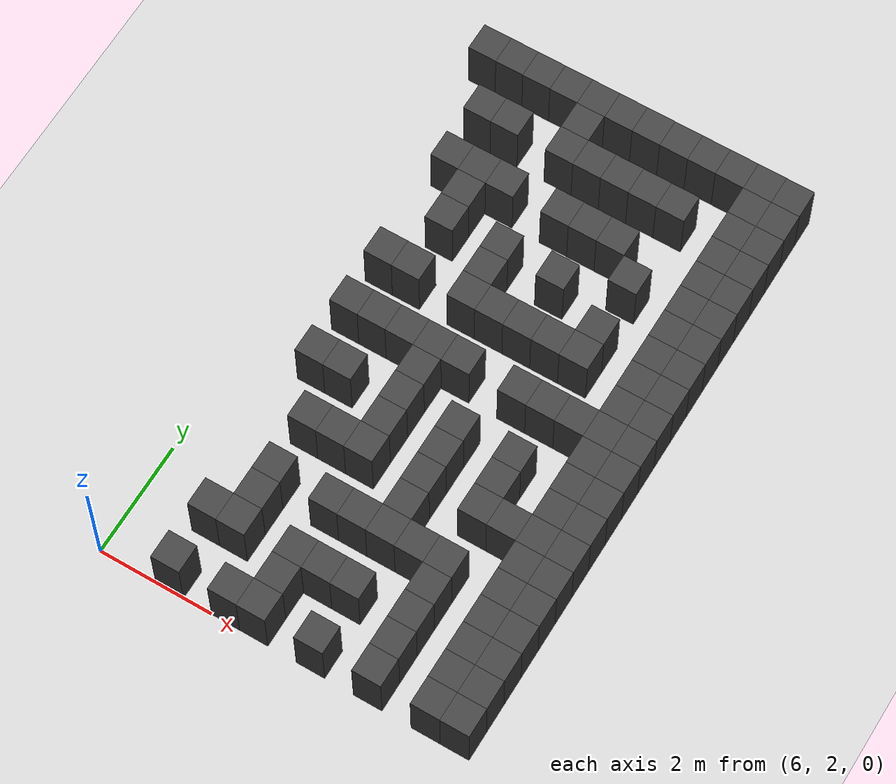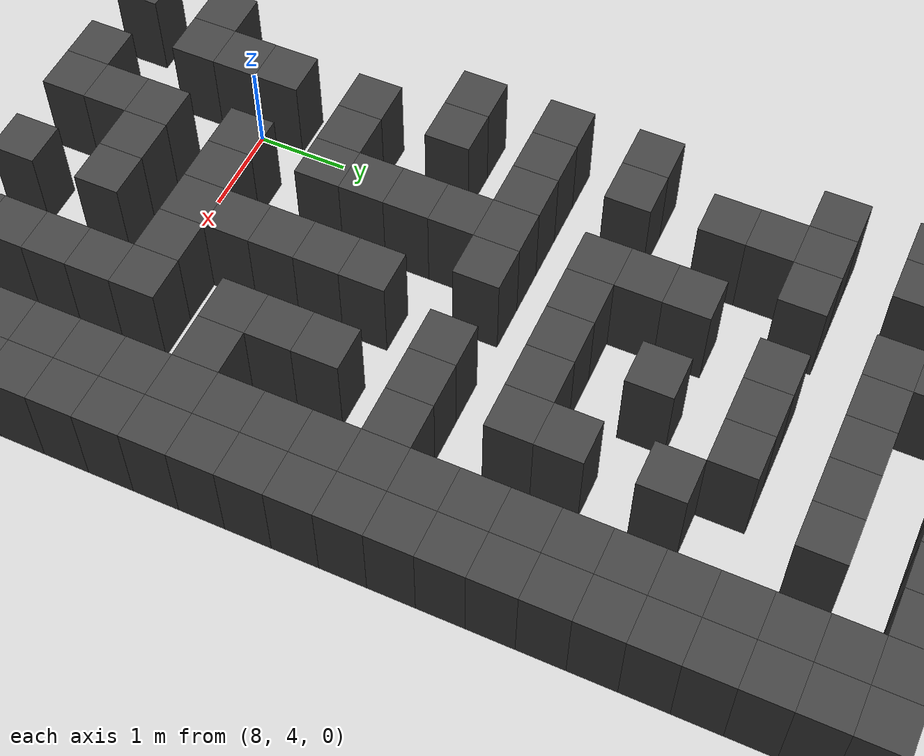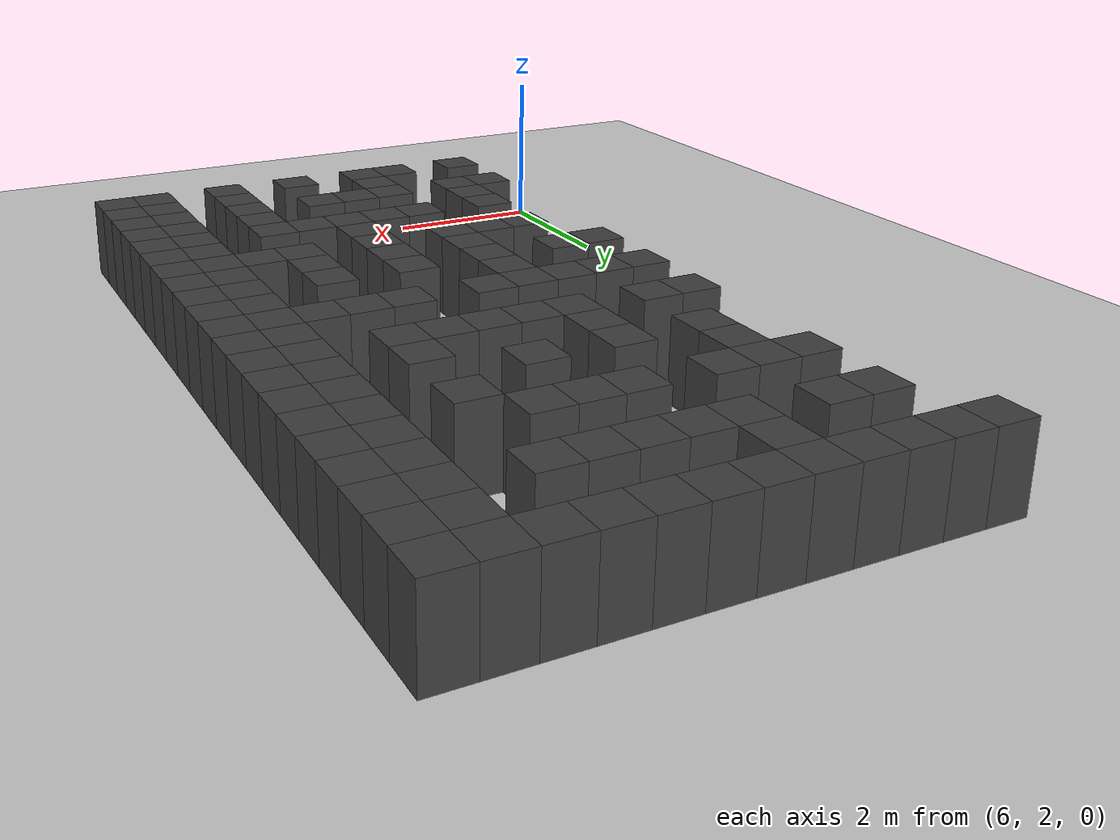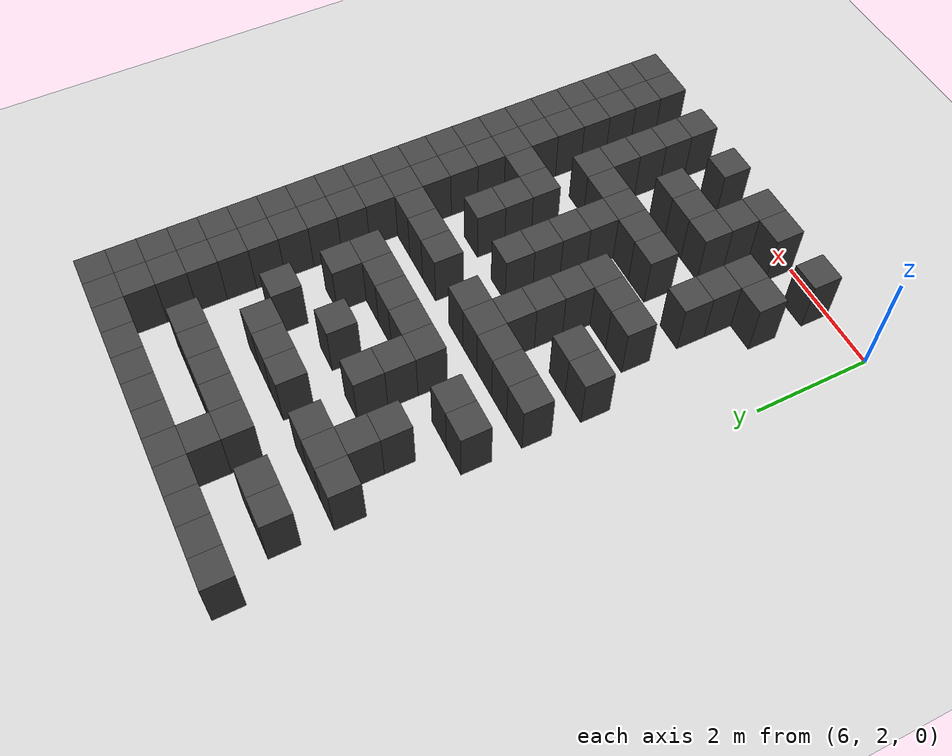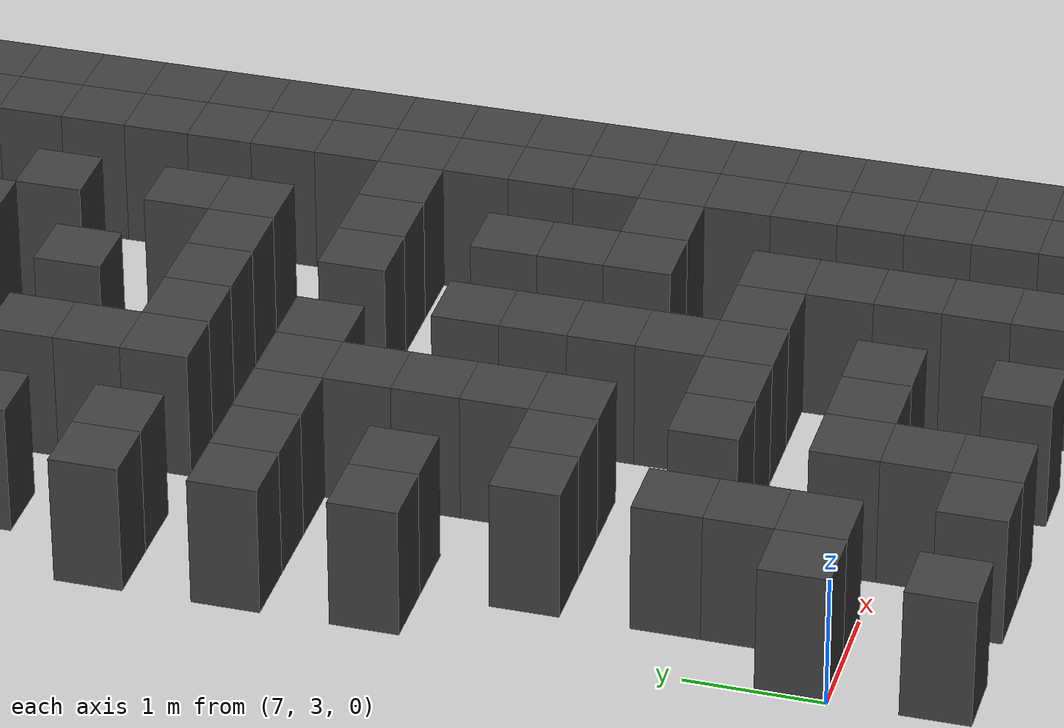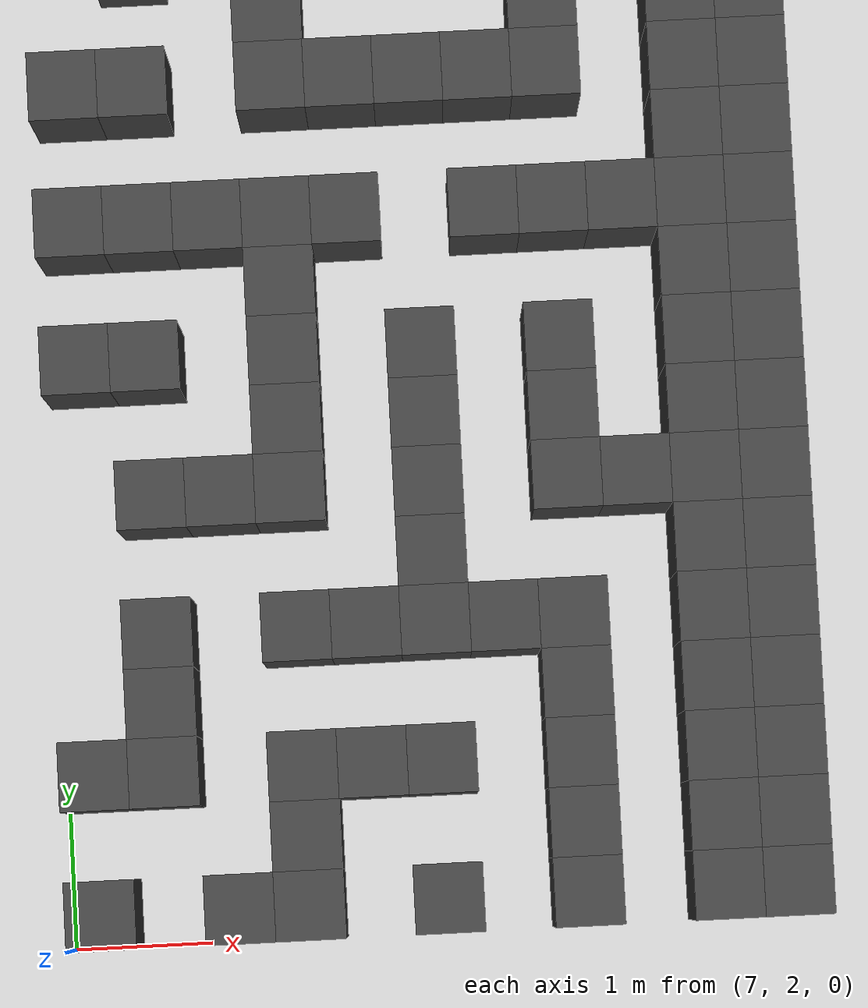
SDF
<sdf version="1.7">
 <world name="map_16734">
  <model name="ground_plane">
   <static>true</static>
   <link name="link">
    <collision name="collision">
     <geometry><plane><normal>0 0 1</normal><size>200 200</size></plane></geometry>
    </collision>
    <visual name="visual">
     <geometry><plane><normal>0 0 1</normal><size>200 200</size></plane></geometry>
     <material><ambient>0.8 0.8 0.8 1</ambient><diffuse>0.8 0.8 0.8 1</diffuse></material>
    </visual>
   </link>
  </model>
  <model name="maze_environment">
   <static>true</static>
   <link name="wall_38">
    <pose>6.750 12.250 0.500 0 0 0</pose>
    <collision name="col"><geometry><box><size>0.5 0.5 1.0</size></box></geometry></collision>
    <visual name="vis">
     <geometry><box><size>0.5 0.5 1.0</size></box></geometry>
     <material><ambient>0.15 0.15 0.15 1</ambient><diffuse>0.25 0.25 0.25 1</diffuse></material>
    </visual>
   </link>
   <link name="wall_39">
    <pose>7.250 12.250 0.500 0 0 0</pose>
    <collision name="col"><geometry><box><size>0.5 0.5 1.0</size></box></geometry></collision>
    <visual name="vis">
     <geometry><box><size>0.5 0.5 1.0</size></box></geometry>
     <material><ambient>0.15 0.15 0.15 1</ambient><diffuse>0.25 0.25 0.25 1</diffuse></material>
    </visual>
   </link>
   <link name="wall_40">
    <pose>7.750 12.250 0.500 0 0 0</pose>
    <collision name="col"><geometry><box><size>0.5 0.5 1.0</size></box></geometry></collision>
    <visual name="vis">
     <geometry><box><size>0.5 0.5 1.0</size></box></geometry>
     <material><ambient>0.15 0.15 0.15 1</ambient><diffuse>0.25 0.25 0.25 1</diffuse></material>
    </visual>
   </link>
   <link name="wall_41">
    <pose>8.250 12.250 0.500 0 0 0</pose>
    <collision name="col"><geometry><box><size>0.5 0.5 1.0</size></box></geometry></collision>
    <visual name="vis">
     <geometry><box><size>0.5 0.5 1.0</size></box></geometry>
     <material><ambient>0.15 0.15 0.15 1</ambient><diffuse>0.25 0.25 0.25 1</diffuse></material>
    </visual>
   </link>
   <link name="wall_42">
    <pose>8.750 12.250 0.500 0 0 0</pose>
    <collision name="col"><geometry><box><size>0.5 0.5 1.0</size></box></geometry></collision>
    <visual name="vis">
     <geometry><box><size>0.5 0.5 1.0</size></box></geometry>
     <material><ambient>0.15 0.15 0.15 1</ambient><diffuse>0.25 0.25 0.25 1</diffuse></material>
    </visual>
   </link>
   <link name="wall_43">
    <pose>9.250 12.250 0.500 0 0 0</pose>
    <collision name="col"><geometry><box><size>0.5 0.5 1.0</size></box></geometry></collision>
    <visual name="vis">
     <geometry><box><size>0.5 0.5 1.0</size></box></geometry>
     <material><ambient>0.15 0.15 0.15 1</ambient><diffuse>0.25 0.25 0.25 1</diffuse></material>
    </visual>
   </link>
   <link name="wall_44">
    <pose>9.750 12.250 0.500 0 0 0</pose>
    <collision name="col"><geometry><box><size>0.5 0.5 1.0</size></box></geometry></collision>
    <visual name="vis">
     <geometry><box><size>0.5 0.5 1.0</size></box></geometry>
     <material><ambient>0.15 0.15 0.15 1</ambient><diffuse>0.25 0.25 0.25 1</diffuse></material>
    </visual>
   </link>
   <link name="wall_45">
    <pose>10.250 12.250 0.500 0 0 0</pose>
    <collision name="col"><geometry><box><size>0.5 0.5 1.0</size></box></geometry></collision>
    <visual name="vis">
     <geometry><box><size>0.5 0.5 1.0</size></box></geometry>
     <material><ambient>0.15 0.15 0.15 1</ambient><diffuse>0.25 0.25 0.25 1</diffuse></material>
    </visual>
   </link>
   <link name="wall_46">
    <pose>10.750 12.250 0.500 0 0 0</pose>
    <collision name="col"><geometry><box><size>0.5 0.5 1.0</size></box></geometry></collision>
    <visual name="vis">
     <geometry><box><size>0.5 0.5 1.0</size></box></geometry>
     <material><ambient>0.15 0.15 0.15 1</ambient><diffuse>0.25 0.25 0.25 1</diffuse></material>
    </visual>
   </link>
   <link name="wall_47">
    <pose>11.250 12.250 0.500 0 0 0</pose>
    <collision name="col"><geometry><box><size>0.5 0.5 1.0</size></box></geometry></collision>
    <visual name="vis">
     <geometry><box><size>0.5 0.5 1.0</size></box></geometry>
     <material><ambient>0.15 0.15 0.15 1</ambient><diffuse>0.25 0.25 0.25 1</diffuse></material>
    </visual>
   </link>
   <link name="wall_48">
    <pose>11.750 12.250 0.500 0 0 0</pose>
    <collision name="col"><geometry><box><size>0.5 0.5 1.0</size></box></geometry></collision>
    <visual name="vis">
     <geometry><box><size>0.5 0.5 1.0</size></box></geometry>
     <material><ambient>0.15 0.15 0.15 1</ambient><diffuse>0.25 0.25 0.25 1</diffuse></material>
    </visual>
   </link>
   <link name="wall_49">
    <pose>12.250 12.250 0.500 0 0 0</pose>
    <collision name="col"><geometry><box><size>0.5 0.5 1.0</size></box></geometry></collision>
    <visual name="vis">
     <geometry><box><size>0.5 0.5 1.0</size></box></geometry>
     <material><ambient>0.15 0.15 0.15 1</ambient><diffuse>0.25 0.25 0.25 1</diffuse></material>
    </visual>
   </link>
   <link name="wall_55">
    <pose>8.750 11.750 0.500 0 0 0</pose>
    <collision name="col"><geometry><box><size>0.5 0.5 1.0</size></box></geometry></collision>
    <visual name="vis">
     <geometry><box><size>0.5 0.5 1.0</size></box></geometry>
     <material><ambient>0.15 0.15 0.15 1</ambient><diffuse>0.25 0.25 0.25 1</diffuse></material>
    </visual>
   </link>
   <link name="wall_56">
    <pose>11.750 11.750 0.500 0 0 0</pose>
    <collision name="col"><geometry><box><size>0.5 0.5 1.0</size></box></geometry></collision>
    <visual name="vis">
     <geometry><box><size>0.5 0.5 1.0</size></box></geometry>
     <material><ambient>0.15 0.15 0.15 1</ambient><diffuse>0.25 0.25 0.25 1</diffuse></material>
    </visual>
   </link>
   <link name="wall_57">
    <pose>12.250 11.750 0.500 0 0 0</pose>
    <collision name="col"><geometry><box><size>0.5 0.5 1.0</size></box></geometry></collision>
    <visual name="vis">
     <geometry><box><size>0.5 0.5 1.0</size></box></geometry>
     <material><ambient>0.15 0.15 0.15 1</ambient><diffuse>0.25 0.25 0.25 1</diffuse></material>
    </visual>
   </link>
   <link name="wall_87">
    <pose>7.250 11.250 0.500 0 0 0</pose>
    <collision name="col"><geometry><box><size>0.5 0.5 1.0</size></box></geometry></collision>
    <visual name="vis">
     <geometry><box><size>0.5 0.5 1.0</size></box></geometry>
     <material><ambient>0.15 0.15 0.15 1</ambient><diffuse>0.25 0.25 0.25 1</diffuse></material>
    </visual>
   </link>
   <link name="wall_88">
    <pose>7.750 11.250 0.500 0 0 0</pose>
    <collision name="col"><geometry><box><size>0.5 0.5 1.0</size></box></geometry></collision>
    <visual name="vis">
     <geometry><box><size>0.5 0.5 1.0</size></box></geometry>
     <material><ambient>0.15 0.15 0.15 1</ambient><diffuse>0.25 0.25 0.25 1</diffuse></material>
    </visual>
   </link>
   <link name="wall_89">
    <pose>8.750 11.250 0.500 0 0 0</pose>
    <collision name="col"><geometry><box><size>0.5 0.5 1.0</size></box></geometry></collision>
    <visual name="vis">
     <geometry><box><size>0.5 0.5 1.0</size></box></geometry>
     <material><ambient>0.15 0.15 0.15 1</ambient><diffuse>0.25 0.25 0.25 1</diffuse></material>
    </visual>
   </link>
   <link name="wall_90">
    <pose>9.250 11.250 0.500 0 0 0</pose>
    <collision name="col"><geometry><box><size>0.5 0.5 1.0</size></box></geometry></collision>
    <visual name="vis">
     <geometry><box><size>0.5 0.5 1.0</size></box></geometry>
     <material><ambient>0.15 0.15 0.15 1</ambient><diffuse>0.25 0.25 0.25 1</diffuse></material>
    </visual>
   </link>
   <link name="wall_91">
    <pose>9.750 11.250 0.500 0 0 0</pose>
    <collision name="col"><geometry><box><size>0.5 0.5 1.0</size></box></geometry></collision>
    <visual name="vis">
     <geometry><box><size>0.5 0.5 1.0</size></box></geometry>
     <material><ambient>0.15 0.15 0.15 1</ambient><diffuse>0.25 0.25 0.25 1</diffuse></material>
    </visual>
   </link>
   <link name="wall_92">
    <pose>10.250 11.250 0.500 0 0 0</pose>
    <collision name="col"><geometry><box><size>0.5 0.5 1.0</size></box></geometry></collision>
    <visual name="vis">
     <geometry><box><size>0.5 0.5 1.0</size></box></geometry>
     <material><ambient>0.15 0.15 0.15 1</ambient><diffuse>0.25 0.25 0.25 1</diffuse></material>
    </visual>
   </link>
   <link name="wall_93">
    <pose>10.750 11.250 0.500 0 0 0</pose>
    <collision name="col"><geometry><box><size>0.5 0.5 1.0</size></box></geometry></collision>
    <visual name="vis">
     <geometry><box><size>0.5 0.5 1.0</size></box></geometry>
     <material><ambient>0.15 0.15 0.15 1</ambient><diffuse>0.25 0.25 0.25 1</diffuse></material>
    </visual>
   </link>
   <link name="wall_94">
    <pose>11.750 11.250 0.500 0 0 0</pose>
    <collision name="col"><geometry><box><size>0.5 0.5 1.0</size></box></geometry></collision>
    <visual name="vis">
     <geometry><box><size>0.5 0.5 1.0</size></box></geometry>
     <material><ambient>0.15 0.15 0.15 1</ambient><diffuse>0.25 0.25 0.25 1</diffuse></material>
    </visual>
   </link>
   <link name="wall_95">
    <pose>12.250 11.250 0.500 0 0 0</pose>
    <collision name="col"><geometry><box><size>0.5 0.5 1.0</size></box></geometry></collision>
    <visual name="vis">
     <geometry><box><size>0.5 0.5 1.0</size></box></geometry>
     <material><ambient>0.15 0.15 0.15 1</ambient><diffuse>0.25 0.25 0.25 1</diffuse></material>
    </visual>
   </link>
   <link name="wall_106">
    <pose>11.750 10.750 0.500 0 0 0</pose>
    <collision name="col"><geometry><box><size>0.5 0.5 1.0</size></box></geometry></collision>
    <visual name="vis">
     <geometry><box><size>0.5 0.5 1.0</size></box></geometry>
     <material><ambient>0.15 0.15 0.15 1</ambient><diffuse>0.25 0.25 0.25 1</diffuse></material>
    </visual>
   </link>
   <link name="wall_107">
    <pose>12.250 10.750 0.500 0 0 0</pose>
    <collision name="col"><geometry><box><size>0.5 0.5 1.0</size></box></geometry></collision>
    <visual name="vis">
     <geometry><box><size>0.5 0.5 1.0</size></box></geometry>
     <material><ambient>0.15 0.15 0.15 1</ambient><diffuse>0.25 0.25 0.25 1</diffuse></material>
    </visual>
   </link>
   <link name="wall_137">
    <pose>7.250 10.250 0.500 0 0 0</pose>
    <collision name="col"><geometry><box><size>0.5 0.5 1.0</size></box></geometry></collision>
    <visual name="vis">
     <geometry><box><size>0.5 0.5 1.0</size></box></geometry>
     <material><ambient>0.15 0.15 0.15 1</ambient><diffuse>0.25 0.25 0.25 1</diffuse></material>
    </visual>
   </link>
   <link name="wall_138">
    <pose>7.750 10.250 0.500 0 0 0</pose>
    <collision name="col"><geometry><box><size>0.5 0.5 1.0</size></box></geometry></collision>
    <visual name="vis">
     <geometry><box><size>0.5 0.5 1.0</size></box></geometry>
     <material><ambient>0.15 0.15 0.15 1</ambient><diffuse>0.25 0.25 0.25 1</diffuse></material>
    </visual>
   </link>
   <link name="wall_139">
    <pose>8.250 10.250 0.500 0 0 0</pose>
    <collision name="col"><geometry><box><size>0.5 0.5 1.0</size></box></geometry></collision>
    <visual name="vis">
     <geometry><box><size>0.5 0.5 1.0</size></box></geometry>
     <material><ambient>0.15 0.15 0.15 1</ambient><diffuse>0.25 0.25 0.25 1</diffuse></material>
    </visual>
   </link>
   <link name="wall_140">
    <pose>9.250 10.250 0.500 0 0 0</pose>
    <collision name="col"><geometry><box><size>0.5 0.5 1.0</size></box></geometry></collision>
    <visual name="vis">
     <geometry><box><size>0.5 0.5 1.0</size></box></geometry>
     <material><ambient>0.15 0.15 0.15 1</ambient><diffuse>0.25 0.25 0.25 1</diffuse></material>
    </visual>
   </link>
   <link name="wall_141">
    <pose>9.750 10.250 0.500 0 0 0</pose>
    <collision name="col"><geometry><box><size>0.5 0.5 1.0</size></box></geometry></collision>
    <visual name="vis">
     <geometry><box><size>0.5 0.5 1.0</size></box></geometry>
     <material><ambient>0.15 0.15 0.15 1</ambient><diffuse>0.25 0.25 0.25 1</diffuse></material>
    </visual>
   </link>
   <link name="wall_142">
    <pose>10.250 10.250 0.500 0 0 0</pose>
    <collision name="col"><geometry><box><size>0.5 0.5 1.0</size></box></geometry></collision>
    <visual name="vis">
     <geometry><box><size>0.5 0.5 1.0</size></box></geometry>
     <material><ambient>0.15 0.15 0.15 1</ambient><diffuse>0.25 0.25 0.25 1</diffuse></material>
    </visual>
   </link>
   <link name="wall_143">
    <pose>11.750 10.250 0.500 0 0 0</pose>
    <collision name="col"><geometry><box><size>0.5 0.5 1.0</size></box></geometry></collision>
    <visual name="vis">
     <geometry><box><size>0.5 0.5 1.0</size></box></geometry>
     <material><ambient>0.15 0.15 0.15 1</ambient><diffuse>0.25 0.25 0.25 1</diffuse></material>
    </visual>
   </link>
   <link name="wall_144">
    <pose>12.250 10.250 0.500 0 0 0</pose>
    <collision name="col"><geometry><box><size>0.5 0.5 1.0</size></box></geometry></collision>
    <visual name="vis">
     <geometry><box><size>0.5 0.5 1.0</size></box></geometry>
     <material><ambient>0.15 0.15 0.15 1</ambient><diffuse>0.25 0.25 0.25 1</diffuse></material>
    </visual>
   </link>
   <link name="wall_154">
    <pose>7.750 9.750 0.500 0 0 0</pose>
    <collision name="col"><geometry><box><size>0.5 0.5 1.0</size></box></geometry></collision>
    <visual name="vis">
     <geometry><box><size>0.5 0.5 1.0</size></box></geometry>
     <material><ambient>0.15 0.15 0.15 1</ambient><diffuse>0.25 0.25 0.25 1</diffuse></material>
    </visual>
   </link>
   <link name="wall_155">
    <pose>10.750 9.750 0.500 0 0 0</pose>
    <collision name="col"><geometry><box><size>0.5 0.5 1.0</size></box></geometry></collision>
    <visual name="vis">
     <geometry><box><size>0.5 0.5 1.0</size></box></geometry>
     <material><ambient>0.15 0.15 0.15 1</ambient><diffuse>0.25 0.25 0.25 1</diffuse></material>
    </visual>
   </link>
   <link name="wall_156">
    <pose>11.750 9.750 0.500 0 0 0</pose>
    <collision name="col"><geometry><box><size>0.5 0.5 1.0</size></box></geometry></collision>
    <visual name="vis">
     <geometry><box><size>0.5 0.5 1.0</size></box></geometry>
     <material><ambient>0.15 0.15 0.15 1</ambient><diffuse>0.25 0.25 0.25 1</diffuse></material>
    </visual>
   </link>
   <link name="wall_157">
    <pose>12.250 9.750 0.500 0 0 0</pose>
    <collision name="col"><geometry><box><size>0.5 0.5 1.0</size></box></geometry></collision>
    <visual name="vis">
     <geometry><box><size>0.5 0.5 1.0</size></box></geometry>
     <material><ambient>0.15 0.15 0.15 1</ambient><diffuse>0.25 0.25 0.25 1</diffuse></material>
    </visual>
   </link>
   <link name="wall_183">
    <pose>7.750 9.250 0.500 0 0 0</pose>
    <collision name="col"><geometry><box><size>0.5 0.5 1.0</size></box></geometry></collision>
    <visual name="vis">
     <geometry><box><size>0.5 0.5 1.0</size></box></geometry>
     <material><ambient>0.15 0.15 0.15 1</ambient><diffuse>0.25 0.25 0.25 1</diffuse></material>
    </visual>
   </link>
   <link name="wall_184">
    <pose>8.750 9.250 0.500 0 0 0</pose>
    <collision name="col"><geometry><box><size>0.5 0.5 1.0</size></box></geometry></collision>
    <visual name="vis">
     <geometry><box><size>0.5 0.5 1.0</size></box></geometry>
     <material><ambient>0.15 0.15 0.15 1</ambient><diffuse>0.25 0.25 0.25 1</diffuse></material>
    </visual>
   </link>
   <link name="wall_185">
    <pose>9.750 9.250 0.500 0 0 0</pose>
    <collision name="col"><geometry><box><size>0.5 0.5 1.0</size></box></geometry></collision>
    <visual name="vis">
     <geometry><box><size>0.5 0.5 1.0</size></box></geometry>
     <material><ambient>0.15 0.15 0.15 1</ambient><diffuse>0.25 0.25 0.25 1</diffuse></material>
    </visual>
   </link>
   <link name="wall_186">
    <pose>11.750 9.250 0.500 0 0 0</pose>
    <collision name="col"><geometry><box><size>0.5 0.5 1.0</size></box></geometry></collision>
    <visual name="vis">
     <geometry><box><size>0.5 0.5 1.0</size></box></geometry>
     <material><ambient>0.15 0.15 0.15 1</ambient><diffuse>0.25 0.25 0.25 1</diffuse></material>
    </visual>
   </link>
   <link name="wall_187">
    <pose>12.250 9.250 0.500 0 0 0</pose>
    <collision name="col"><geometry><box><size>0.5 0.5 1.0</size></box></geometry></collision>
    <visual name="vis">
     <geometry><box><size>0.5 0.5 1.0</size></box></geometry>
     <material><ambient>0.15 0.15 0.15 1</ambient><diffuse>0.25 0.25 0.25 1</diffuse></material>
    </visual>
   </link>
   <link name="wall_196">
    <pose>8.750 8.750 0.500 0 0 0</pose>
    <collision name="col"><geometry><box><size>0.5 0.5 1.0</size></box></geometry></collision>
    <visual name="vis">
     <geometry><box><size>0.5 0.5 1.0</size></box></geometry>
     <material><ambient>0.15 0.15 0.15 1</ambient><diffuse>0.25 0.25 0.25 1</diffuse></material>
    </visual>
   </link>
   <link name="wall_197">
    <pose>10.750 8.750 0.500 0 0 0</pose>
    <collision name="col"><geometry><box><size>0.5 0.5 1.0</size></box></geometry></collision>
    <visual name="vis">
     <geometry><box><size>0.5 0.5 1.0</size></box></geometry>
     <material><ambient>0.15 0.15 0.15 1</ambient><diffuse>0.25 0.25 0.25 1</diffuse></material>
    </visual>
   </link>
   <link name="wall_198">
    <pose>11.750 8.750 0.500 0 0 0</pose>
    <collision name="col"><geometry><box><size>0.5 0.5 1.0</size></box></geometry></collision>
    <visual name="vis">
     <geometry><box><size>0.5 0.5 1.0</size></box></geometry>
     <material><ambient>0.15 0.15 0.15 1</ambient><diffuse>0.25 0.25 0.25 1</diffuse></material>
    </visual>
   </link>
   <link name="wall_199">
    <pose>12.250 8.750 0.500 0 0 0</pose>
    <collision name="col"><geometry><box><size>0.5 0.5 1.0</size></box></geometry></collision>
    <visual name="vis">
     <geometry><box><size>0.5 0.5 1.0</size></box></geometry>
     <material><ambient>0.15 0.15 0.15 1</ambient><diffuse>0.25 0.25 0.25 1</diffuse></material>
    </visual>
   </link>
   <link name="wall_228">
    <pose>7.250 8.250 0.500 0 0 0</pose>
    <collision name="col"><geometry><box><size>0.5 0.5 1.0</size></box></geometry></collision>
    <visual name="vis">
     <geometry><box><size>0.5 0.5 1.0</size></box></geometry>
     <material><ambient>0.15 0.15 0.15 1</ambient><diffuse>0.25 0.25 0.25 1</diffuse></material>
    </visual>
   </link>
   <link name="wall_229">
    <pose>7.750 8.250 0.500 0 0 0</pose>
    <collision name="col"><geometry><box><size>0.5 0.5 1.0</size></box></geometry></collision>
    <visual name="vis">
     <geometry><box><size>0.5 0.5 1.0</size></box></geometry>
     <material><ambient>0.15 0.15 0.15 1</ambient><diffuse>0.25 0.25 0.25 1</diffuse></material>
    </visual>
   </link>
   <link name="wall_230">
    <pose>8.750 8.250 0.500 0 0 0</pose>
    <collision name="col"><geometry><box><size>0.5 0.5 1.0</size></box></geometry></collision>
    <visual name="vis">
     <geometry><box><size>0.5 0.5 1.0</size></box></geometry>
     <material><ambient>0.15 0.15 0.15 1</ambient><diffuse>0.25 0.25 0.25 1</diffuse></material>
    </visual>
   </link>
   <link name="wall_231">
    <pose>9.250 8.250 0.500 0 0 0</pose>
    <collision name="col"><geometry><box><size>0.5 0.5 1.0</size></box></geometry></collision>
    <visual name="vis">
     <geometry><box><size>0.5 0.5 1.0</size></box></geometry>
     <material><ambient>0.15 0.15 0.15 1</ambient><diffuse>0.25 0.25 0.25 1</diffuse></material>
    </visual>
   </link>
   <link name="wall_232">
    <pose>9.750 8.250 0.500 0 0 0</pose>
    <collision name="col"><geometry><box><size>0.5 0.5 1.0</size></box></geometry></collision>
    <visual name="vis">
     <geometry><box><size>0.5 0.5 1.0</size></box></geometry>
     <material><ambient>0.15 0.15 0.15 1</ambient><diffuse>0.25 0.25 0.25 1</diffuse></material>
    </visual>
   </link>
   <link name="wall_233">
    <pose>10.250 8.250 0.500 0 0 0</pose>
    <collision name="col"><geometry><box><size>0.5 0.5 1.0</size></box></geometry></collision>
    <visual name="vis">
     <geometry><box><size>0.5 0.5 1.0</size></box></geometry>
     <material><ambient>0.15 0.15 0.15 1</ambient><diffuse>0.25 0.25 0.25 1</diffuse></material>
    </visual>
   </link>
   <link name="wall_234">
    <pose>10.750 8.250 0.500 0 0 0</pose>
    <collision name="col"><geometry><box><size>0.5 0.5 1.0</size></box></geometry></collision>
    <visual name="vis">
     <geometry><box><size>0.5 0.5 1.0</size></box></geometry>
     <material><ambient>0.15 0.15 0.15 1</ambient><diffuse>0.25 0.25 0.25 1</diffuse></material>
    </visual>
   </link>
   <link name="wall_235">
    <pose>11.750 8.250 0.500 0 0 0</pose>
    <collision name="col"><geometry><box><size>0.5 0.5 1.0</size></box></geometry></collision>
    <visual name="vis">
     <geometry><box><size>0.5 0.5 1.0</size></box></geometry>
     <material><ambient>0.15 0.15 0.15 1</ambient><diffuse>0.25 0.25 0.25 1</diffuse></material>
    </visual>
   </link>
   <link name="wall_236">
    <pose>12.250 8.250 0.500 0 0 0</pose>
    <collision name="col"><geometry><box><size>0.5 0.5 1.0</size></box></geometry></collision>
    <visual name="vis">
     <geometry><box><size>0.5 0.5 1.0</size></box></geometry>
     <material><ambient>0.15 0.15 0.15 1</ambient><diffuse>0.25 0.25 0.25 1</diffuse></material>
    </visual>
   </link>
   <link name="wall_243">
    <pose>11.750 7.750 0.500 0 0 0</pose>
    <collision name="col"><geometry><box><size>0.5 0.5 1.0</size></box></geometry></collision>
    <visual name="vis">
     <geometry><box><size>0.5 0.5 1.0</size></box></geometry>
     <material><ambient>0.15 0.15 0.15 1</ambient><diffuse>0.25 0.25 0.25 1</diffuse></material>
    </visual>
   </link>
   <link name="wall_244">
    <pose>12.250 7.750 0.500 0 0 0</pose>
    <collision name="col"><geometry><box><size>0.5 0.5 1.0</size></box></geometry></collision>
    <visual name="vis">
     <geometry><box><size>0.5 0.5 1.0</size></box></geometry>
     <material><ambient>0.15 0.15 0.15 1</ambient><diffuse>0.25 0.25 0.25 1</diffuse></material>
    </visual>
   </link>
   <link name="wall_273">
    <pose>7.250 7.250 0.500 0 0 0</pose>
    <collision name="col"><geometry><box><size>0.5 0.5 1.0</size></box></geometry></collision>
    <visual name="vis">
     <geometry><box><size>0.5 0.5 1.0</size></box></geometry>
     <material><ambient>0.15 0.15 0.15 1</ambient><diffuse>0.25 0.25 0.25 1</diffuse></material>
    </visual>
   </link>
   <link name="wall_274">
    <pose>7.750 7.250 0.500 0 0 0</pose>
    <collision name="col"><geometry><box><size>0.5 0.5 1.0</size></box></geometry></collision>
    <visual name="vis">
     <geometry><box><size>0.5 0.5 1.0</size></box></geometry>
     <material><ambient>0.15 0.15 0.15 1</ambient><diffuse>0.25 0.25 0.25 1</diffuse></material>
    </visual>
   </link>
   <link name="wall_275">
    <pose>8.250 7.250 0.500 0 0 0</pose>
    <collision name="col"><geometry><box><size>0.5 0.5 1.0</size></box></geometry></collision>
    <visual name="vis">
     <geometry><box><size>0.5 0.5 1.0</size></box></geometry>
     <material><ambient>0.15 0.15 0.15 1</ambient><diffuse>0.25 0.25 0.25 1</diffuse></material>
    </visual>
   </link>
   <link name="wall_276">
    <pose>8.750 7.250 0.500 0 0 0</pose>
    <collision name="col"><geometry><box><size>0.5 0.5 1.0</size></box></geometry></collision>
    <visual name="vis">
     <geometry><box><size>0.5 0.5 1.0</size></box></geometry>
     <material><ambient>0.15 0.15 0.15 1</ambient><diffuse>0.25 0.25 0.25 1</diffuse></material>
    </visual>
   </link>
   <link name="wall_277">
    <pose>9.250 7.250 0.500 0 0 0</pose>
    <collision name="col"><geometry><box><size>0.5 0.5 1.0</size></box></geometry></collision>
    <visual name="vis">
     <geometry><box><size>0.5 0.5 1.0</size></box></geometry>
     <material><ambient>0.15 0.15 0.15 1</ambient><diffuse>0.25 0.25 0.25 1</diffuse></material>
    </visual>
   </link>
   <link name="wall_278">
    <pose>10.250 7.250 0.500 0 0 0</pose>
    <collision name="col"><geometry><box><size>0.5 0.5 1.0</size></box></geometry></collision>
    <visual name="vis">
     <geometry><box><size>0.5 0.5 1.0</size></box></geometry>
     <material><ambient>0.15 0.15 0.15 1</ambient><diffuse>0.25 0.25 0.25 1</diffuse></material>
    </visual>
   </link>
   <link name="wall_279">
    <pose>10.750 7.250 0.500 0 0 0</pose>
    <collision name="col"><geometry><box><size>0.5 0.5 1.0</size></box></geometry></collision>
    <visual name="vis">
     <geometry><box><size>0.5 0.5 1.0</size></box></geometry>
     <material><ambient>0.15 0.15 0.15 1</ambient><diffuse>0.25 0.25 0.25 1</diffuse></material>
    </visual>
   </link>
   <link name="wall_280">
    <pose>11.250 7.250 0.500 0 0 0</pose>
    <collision name="col"><geometry><box><size>0.5 0.5 1.0</size></box></geometry></collision>
    <visual name="vis">
     <geometry><box><size>0.5 0.5 1.0</size></box></geometry>
     <material><ambient>0.15 0.15 0.15 1</ambient><diffuse>0.25 0.25 0.25 1</diffuse></material>
    </visual>
   </link>
   <link name="wall_281">
    <pose>11.750 7.250 0.500 0 0 0</pose>
    <collision name="col"><geometry><box><size>0.5 0.5 1.0</size></box></geometry></collision>
    <visual name="vis">
     <geometry><box><size>0.5 0.5 1.0</size></box></geometry>
     <material><ambient>0.15 0.15 0.15 1</ambient><diffuse>0.25 0.25 0.25 1</diffuse></material>
    </visual>
   </link>
   <link name="wall_282">
    <pose>12.250 7.250 0.500 0 0 0</pose>
    <collision name="col"><geometry><box><size>0.5 0.5 1.0</size></box></geometry></collision>
    <visual name="vis">
     <geometry><box><size>0.5 0.5 1.0</size></box></geometry>
     <material><ambient>0.15 0.15 0.15 1</ambient><diffuse>0.25 0.25 0.25 1</diffuse></material>
    </visual>
   </link>
   <link name="wall_293">
    <pose>8.750 6.750 0.500 0 0 0</pose>
    <collision name="col"><geometry><box><size>0.5 0.5 1.0</size></box></geometry></collision>
    <visual name="vis">
     <geometry><box><size>0.5 0.5 1.0</size></box></geometry>
     <material><ambient>0.15 0.15 0.15 1</ambient><diffuse>0.25 0.25 0.25 1</diffuse></material>
    </visual>
   </link>
   <link name="wall_294">
    <pose>11.750 6.750 0.500 0 0 0</pose>
    <collision name="col"><geometry><box><size>0.5 0.5 1.0</size></box></geometry></collision>
    <visual name="vis">
     <geometry><box><size>0.5 0.5 1.0</size></box></geometry>
     <material><ambient>0.15 0.15 0.15 1</ambient><diffuse>0.25 0.25 0.25 1</diffuse></material>
    </visual>
   </link>
   <link name="wall_295">
    <pose>12.250 6.750 0.500 0 0 0</pose>
    <collision name="col"><geometry><box><size>0.5 0.5 1.0</size></box></geometry></collision>
    <visual name="vis">
     <geometry><box><size>0.5 0.5 1.0</size></box></geometry>
     <material><ambient>0.15 0.15 0.15 1</ambient><diffuse>0.25 0.25 0.25 1</diffuse></material>
    </visual>
   </link>
   <link name="wall_327">
    <pose>7.250 6.250 0.500 0 0 0</pose>
    <collision name="col"><geometry><box><size>0.5 0.5 1.0</size></box></geometry></collision>
    <visual name="vis">
     <geometry><box><size>0.5 0.5 1.0</size></box></geometry>
     <material><ambient>0.15 0.15 0.15 1</ambient><diffuse>0.25 0.25 0.25 1</diffuse></material>
    </visual>
   </link>
   <link name="wall_328">
    <pose>7.750 6.250 0.500 0 0 0</pose>
    <collision name="col"><geometry><box><size>0.5 0.5 1.0</size></box></geometry></collision>
    <visual name="vis">
     <geometry><box><size>0.5 0.5 1.0</size></box></geometry>
     <material><ambient>0.15 0.15 0.15 1</ambient><diffuse>0.25 0.25 0.25 1</diffuse></material>
    </visual>
   </link>
   <link name="wall_329">
    <pose>8.750 6.250 0.500 0 0 0</pose>
    <collision name="col"><geometry><box><size>0.5 0.5 1.0</size></box></geometry></collision>
    <visual name="vis">
     <geometry><box><size>0.5 0.5 1.0</size></box></geometry>
     <material><ambient>0.15 0.15 0.15 1</ambient><diffuse>0.25 0.25 0.25 1</diffuse></material>
    </visual>
   </link>
   <link name="wall_330">
    <pose>9.750 6.250 0.500 0 0 0</pose>
    <collision name="col"><geometry><box><size>0.5 0.5 1.0</size></box></geometry></collision>
    <visual name="vis">
     <geometry><box><size>0.5 0.5 1.0</size></box></geometry>
     <material><ambient>0.15 0.15 0.15 1</ambient><diffuse>0.25 0.25 0.25 1</diffuse></material>
    </visual>
   </link>
   <link name="wall_331">
    <pose>10.750 6.250 0.500 0 0 0</pose>
    <collision name="col"><geometry><box><size>0.5 0.5 1.0</size></box></geometry></collision>
    <visual name="vis">
     <geometry><box><size>0.5 0.5 1.0</size></box></geometry>
     <material><ambient>0.15 0.15 0.15 1</ambient><diffuse>0.25 0.25 0.25 1</diffuse></material>
    </visual>
   </link>
   <link name="wall_332">
    <pose>11.750 6.250 0.500 0 0 0</pose>
    <collision name="col"><geometry><box><size>0.5 0.5 1.0</size></box></geometry></collision>
    <visual name="vis">
     <geometry><box><size>0.5 0.5 1.0</size></box></geometry>
     <material><ambient>0.15 0.15 0.15 1</ambient><diffuse>0.25 0.25 0.25 1</diffuse></material>
    </visual>
   </link>
   <link name="wall_333">
    <pose>12.250 6.250 0.500 0 0 0</pose>
    <collision name="col"><geometry><box><size>0.5 0.5 1.0</size></box></geometry></collision>
    <visual name="vis">
     <geometry><box><size>0.5 0.5 1.0</size></box></geometry>
     <material><ambient>0.15 0.15 0.15 1</ambient><diffuse>0.25 0.25 0.25 1</diffuse></material>
    </visual>
   </link>
   <link name="wall_343">
    <pose>8.750 5.750 0.500 0 0 0</pose>
    <collision name="col"><geometry><box><size>0.5 0.5 1.0</size></box></geometry></collision>
    <visual name="vis">
     <geometry><box><size>0.5 0.5 1.0</size></box></geometry>
     <material><ambient>0.15 0.15 0.15 1</ambient><diffuse>0.25 0.25 0.25 1</diffuse></material>
    </visual>
   </link>
   <link name="wall_344">
    <pose>9.750 5.750 0.500 0 0 0</pose>
    <collision name="col"><geometry><box><size>0.5 0.5 1.0</size></box></geometry></collision>
    <visual name="vis">
     <geometry><box><size>0.5 0.5 1.0</size></box></geometry>
     <material><ambient>0.15 0.15 0.15 1</ambient><diffuse>0.25 0.25 0.25 1</diffuse></material>
    </visual>
   </link>
   <link name="wall_345">
    <pose>10.750 5.750 0.500 0 0 0</pose>
    <collision name="col"><geometry><box><size>0.5 0.5 1.0</size></box></geometry></collision>
    <visual name="vis">
     <geometry><box><size>0.5 0.5 1.0</size></box></geometry>
     <material><ambient>0.15 0.15 0.15 1</ambient><diffuse>0.25 0.25 0.25 1</diffuse></material>
    </visual>
   </link>
   <link name="wall_346">
    <pose>11.750 5.750 0.500 0 0 0</pose>
    <collision name="col"><geometry><box><size>0.5 0.5 1.0</size></box></geometry></collision>
    <visual name="vis">
     <geometry><box><size>0.5 0.5 1.0</size></box></geometry>
     <material><ambient>0.15 0.15 0.15 1</ambient><diffuse>0.25 0.25 0.25 1</diffuse></material>
    </visual>
   </link>
   <link name="wall_347">
    <pose>12.250 5.750 0.500 0 0 0</pose>
    <collision name="col"><geometry><box><size>0.5 0.5 1.0</size></box></geometry></collision>
    <visual name="vis">
     <geometry><box><size>0.5 0.5 1.0</size></box></geometry>
     <material><ambient>0.15 0.15 0.15 1</ambient><diffuse>0.25 0.25 0.25 1</diffuse></material>
    </visual>
   </link>
   <link name="wall_371">
    <pose>7.750 5.250 0.500 0 0 0</pose>
    <collision name="col"><geometry><box><size>0.5 0.5 1.0</size></box></geometry></collision>
    <visual name="vis">
     <geometry><box><size>0.5 0.5 1.0</size></box></geometry>
     <material><ambient>0.15 0.15 0.15 1</ambient><diffuse>0.25 0.25 0.25 1</diffuse></material>
    </visual>
   </link>
   <link name="wall_372">
    <pose>8.250 5.250 0.500 0 0 0</pose>
    <collision name="col"><geometry><box><size>0.5 0.5 1.0</size></box></geometry></collision>
    <visual name="vis">
     <geometry><box><size>0.5 0.5 1.0</size></box></geometry>
     <material><ambient>0.15 0.15 0.15 1</ambient><diffuse>0.25 0.25 0.25 1</diffuse></material>
    </visual>
   </link>
   <link name="wall_373">
    <pose>8.750 5.250 0.500 0 0 0</pose>
    <collision name="col"><geometry><box><size>0.5 0.5 1.0</size></box></geometry></collision>
    <visual name="vis">
     <geometry><box><size>0.5 0.5 1.0</size></box></geometry>
     <material><ambient>0.15 0.15 0.15 1</ambient><diffuse>0.25 0.25 0.25 1</diffuse></material>
    </visual>
   </link>
   <link name="wall_374">
    <pose>9.750 5.250 0.500 0 0 0</pose>
    <collision name="col"><geometry><box><size>0.5 0.5 1.0</size></box></geometry></collision>
    <visual name="vis">
     <geometry><box><size>0.5 0.5 1.0</size></box></geometry>
     <material><ambient>0.15 0.15 0.15 1</ambient><diffuse>0.25 0.25 0.25 1</diffuse></material>
    </visual>
   </link>
   <link name="wall_375">
    <pose>10.750 5.250 0.500 0 0 0</pose>
    <collision name="col"><geometry><box><size>0.5 0.5 1.0</size></box></geometry></collision>
    <visual name="vis">
     <geometry><box><size>0.5 0.5 1.0</size></box></geometry>
     <material><ambient>0.15 0.15 0.15 1</ambient><diffuse>0.25 0.25 0.25 1</diffuse></material>
    </visual>
   </link>
   <link name="wall_376">
    <pose>11.250 5.250 0.500 0 0 0</pose>
    <collision name="col"><geometry><box><size>0.5 0.5 1.0</size></box></geometry></collision>
    <visual name="vis">
     <geometry><box><size>0.5 0.5 1.0</size></box></geometry>
     <material><ambient>0.15 0.15 0.15 1</ambient><diffuse>0.25 0.25 0.25 1</diffuse></material>
    </visual>
   </link>
   <link name="wall_377">
    <pose>11.750 5.250 0.500 0 0 0</pose>
    <collision name="col"><geometry><box><size>0.5 0.5 1.0</size></box></geometry></collision>
    <visual name="vis">
     <geometry><box><size>0.5 0.5 1.0</size></box></geometry>
     <material><ambient>0.15 0.15 0.15 1</ambient><diffuse>0.25 0.25 0.25 1</diffuse></material>
    </visual>
   </link>
   <link name="wall_378">
    <pose>12.250 5.250 0.500 0 0 0</pose>
    <collision name="col"><geometry><box><size>0.5 0.5 1.0</size></box></geometry></collision>
    <visual name="vis">
     <geometry><box><size>0.5 0.5 1.0</size></box></geometry>
     <material><ambient>0.15 0.15 0.15 1</ambient><diffuse>0.25 0.25 0.25 1</diffuse></material>
    </visual>
   </link>
   <link name="wall_390">
    <pose>9.750 4.750 0.500 0 0 0</pose>
    <collision name="col"><geometry><box><size>0.5 0.5 1.0</size></box></geometry></collision>
    <visual name="vis">
     <geometry><box><size>0.5 0.5 1.0</size></box></geometry>
     <material><ambient>0.15 0.15 0.15 1</ambient><diffuse>0.25 0.25 0.25 1</diffuse></material>
    </visual>
   </link>
   <link name="wall_391">
    <pose>11.750 4.750 0.500 0 0 0</pose>
    <collision name="col"><geometry><box><size>0.5 0.5 1.0</size></box></geometry></collision>
    <visual name="vis">
     <geometry><box><size>0.5 0.5 1.0</size></box></geometry>
     <material><ambient>0.15 0.15 0.15 1</ambient><diffuse>0.25 0.25 0.25 1</diffuse></material>
    </visual>
   </link>
   <link name="wall_392">
    <pose>12.250 4.750 0.500 0 0 0</pose>
    <collision name="col"><geometry><box><size>0.5 0.5 1.0</size></box></geometry></collision>
    <visual name="vis">
     <geometry><box><size>0.5 0.5 1.0</size></box></geometry>
     <material><ambient>0.15 0.15 0.15 1</ambient><diffuse>0.25 0.25 0.25 1</diffuse></material>
    </visual>
   </link>
   <link name="wall_420">
    <pose>7.750 4.250 0.500 0 0 0</pose>
    <collision name="col"><geometry><box><size>0.5 0.5 1.0</size></box></geometry></collision>
    <visual name="vis">
     <geometry><box><size>0.5 0.5 1.0</size></box></geometry>
     <material><ambient>0.15 0.15 0.15 1</ambient><diffuse>0.25 0.25 0.25 1</diffuse></material>
    </visual>
   </link>
   <link name="wall_421">
    <pose>8.750 4.250 0.500 0 0 0</pose>
    <collision name="col"><geometry><box><size>0.5 0.5 1.0</size></box></geometry></collision>
    <visual name="vis">
     <geometry><box><size>0.5 0.5 1.0</size></box></geometry>
     <material><ambient>0.15 0.15 0.15 1</ambient><diffuse>0.25 0.25 0.25 1</diffuse></material>
    </visual>
   </link>
   <link name="wall_422">
    <pose>9.250 4.250 0.500 0 0 0</pose>
    <collision name="col"><geometry><box><size>0.5 0.5 1.0</size></box></geometry></collision>
    <visual name="vis">
     <geometry><box><size>0.5 0.5 1.0</size></box></geometry>
     <material><ambient>0.15 0.15 0.15 1</ambient><diffuse>0.25 0.25 0.25 1</diffuse></material>
    </visual>
   </link>
   <link name="wall_423">
    <pose>9.750 4.250 0.500 0 0 0</pose>
    <collision name="col"><geometry><box><size>0.5 0.5 1.0</size></box></geometry></collision>
    <visual name="vis">
     <geometry><box><size>0.5 0.5 1.0</size></box></geometry>
     <material><ambient>0.15 0.15 0.15 1</ambient><diffuse>0.25 0.25 0.25 1</diffuse></material>
    </visual>
   </link>
   <link name="wall_424">
    <pose>10.250 4.250 0.500 0 0 0</pose>
    <collision name="col"><geometry><box><size>0.5 0.5 1.0</size></box></geometry></collision>
    <visual name="vis">
     <geometry><box><size>0.5 0.5 1.0</size></box></geometry>
     <material><ambient>0.15 0.15 0.15 1</ambient><diffuse>0.25 0.25 0.25 1</diffuse></material>
    </visual>
   </link>
   <link name="wall_425">
    <pose>10.750 4.250 0.500 0 0 0</pose>
    <collision name="col"><geometry><box><size>0.5 0.5 1.0</size></box></geometry></collision>
    <visual name="vis">
     <geometry><box><size>0.5 0.5 1.0</size></box></geometry>
     <material><ambient>0.15 0.15 0.15 1</ambient><diffuse>0.25 0.25 0.25 1</diffuse></material>
    </visual>
   </link>
   <link name="wall_426">
    <pose>11.750 4.250 0.500 0 0 0</pose>
    <collision name="col"><geometry><box><size>0.5 0.5 1.0</size></box></geometry></collision>
    <visual name="vis">
     <geometry><box><size>0.5 0.5 1.0</size></box></geometry>
     <material><ambient>0.15 0.15 0.15 1</ambient><diffuse>0.25 0.25 0.25 1</diffuse></material>
    </visual>
   </link>
   <link name="wall_427">
    <pose>12.250 4.250 0.500 0 0 0</pose>
    <collision name="col"><geometry><box><size>0.5 0.5 1.0</size></box></geometry></collision>
    <visual name="vis">
     <geometry><box><size>0.5 0.5 1.0</size></box></geometry>
     <material><ambient>0.15 0.15 0.15 1</ambient><diffuse>0.25 0.25 0.25 1</diffuse></material>
    </visual>
   </link>
   <link name="wall_435">
    <pose>7.750 3.750 0.500 0 0 0</pose>
    <collision name="col"><geometry><box><size>0.5 0.5 1.0</size></box></geometry></collision>
    <visual name="vis">
     <geometry><box><size>0.5 0.5 1.0</size></box></geometry>
     <material><ambient>0.15 0.15 0.15 1</ambient><diffuse>0.25 0.25 0.25 1</diffuse></material>
    </visual>
   </link>
   <link name="wall_436">
    <pose>10.750 3.750 0.500 0 0 0</pose>
    <collision name="col"><geometry><box><size>0.5 0.5 1.0</size></box></geometry></collision>
    <visual name="vis">
     <geometry><box><size>0.5 0.5 1.0</size></box></geometry>
     <material><ambient>0.15 0.15 0.15 1</ambient><diffuse>0.25 0.25 0.25 1</diffuse></material>
    </visual>
   </link>
   <link name="wall_437">
    <pose>11.750 3.750 0.500 0 0 0</pose>
    <collision name="col"><geometry><box><size>0.5 0.5 1.0</size></box></geometry></collision>
    <visual name="vis">
     <geometry><box><size>0.5 0.5 1.0</size></box></geometry>
     <material><ambient>0.15 0.15 0.15 1</ambient><diffuse>0.25 0.25 0.25 1</diffuse></material>
    </visual>
   </link>
   <link name="wall_438">
    <pose>12.250 3.750 0.500 0 0 0</pose>
    <collision name="col"><geometry><box><size>0.5 0.5 1.0</size></box></geometry></collision>
    <visual name="vis">
     <geometry><box><size>0.5 0.5 1.0</size></box></geometry>
     <material><ambient>0.15 0.15 0.15 1</ambient><diffuse>0.25 0.25 0.25 1</diffuse></material>
    </visual>
   </link>
   <link name="wall_465">
    <pose>7.250 3.250 0.500 0 0 0</pose>
    <collision name="col"><geometry><box><size>0.5 0.5 1.0</size></box></geometry></collision>
    <visual name="vis">
     <geometry><box><size>0.5 0.5 1.0</size></box></geometry>
     <material><ambient>0.15 0.15 0.15 1</ambient><diffuse>0.25 0.25 0.25 1</diffuse></material>
    </visual>
   </link>
   <link name="wall_466">
    <pose>7.750 3.250 0.500 0 0 0</pose>
    <collision name="col"><geometry><box><size>0.5 0.5 1.0</size></box></geometry></collision>
    <visual name="vis">
     <geometry><box><size>0.5 0.5 1.0</size></box></geometry>
     <material><ambient>0.15 0.15 0.15 1</ambient><diffuse>0.25 0.25 0.25 1</diffuse></material>
    </visual>
   </link>
   <link name="wall_467">
    <pose>8.750 3.250 0.500 0 0 0</pose>
    <collision name="col"><geometry><box><size>0.5 0.5 1.0</size></box></geometry></collision>
    <visual name="vis">
     <geometry><box><size>0.5 0.5 1.0</size></box></geometry>
     <material><ambient>0.15 0.15 0.15 1</ambient><diffuse>0.25 0.25 0.25 1</diffuse></material>
    </visual>
   </link>
   <link name="wall_468">
    <pose>9.250 3.250 0.500 0 0 0</pose>
    <collision name="col"><geometry><box><size>0.5 0.5 1.0</size></box></geometry></collision>
    <visual name="vis">
     <geometry><box><size>0.5 0.5 1.0</size></box></geometry>
     <material><ambient>0.15 0.15 0.15 1</ambient><diffuse>0.25 0.25 0.25 1</diffuse></material>
    </visual>
   </link>
   <link name="wall_469">
    <pose>9.750 3.250 0.500 0 0 0</pose>
    <collision name="col"><geometry><box><size>0.5 0.5 1.0</size></box></geometry></collision>
    <visual name="vis">
     <geometry><box><size>0.5 0.5 1.0</size></box></geometry>
     <material><ambient>0.15 0.15 0.15 1</ambient><diffuse>0.25 0.25 0.25 1</diffuse></material>
    </visual>
   </link>
   <link name="wall_470">
    <pose>10.750 3.250 0.500 0 0 0</pose>
    <collision name="col"><geometry><box><size>0.5 0.5 1.0</size></box></geometry></collision>
    <visual name="vis">
     <geometry><box><size>0.5 0.5 1.0</size></box></geometry>
     <material><ambient>0.15 0.15 0.15 1</ambient><diffuse>0.25 0.25 0.25 1</diffuse></material>
    </visual>
   </link>
   <link name="wall_471">
    <pose>11.750 3.250 0.500 0 0 0</pose>
    <collision name="col"><geometry><box><size>0.5 0.5 1.0</size></box></geometry></collision>
    <visual name="vis">
     <geometry><box><size>0.5 0.5 1.0</size></box></geometry>
     <material><ambient>0.15 0.15 0.15 1</ambient><diffuse>0.25 0.25 0.25 1</diffuse></material>
    </visual>
   </link>
   <link name="wall_472">
    <pose>12.250 3.250 0.500 0 0 0</pose>
    <collision name="col"><geometry><box><size>0.5 0.5 1.0</size></box></geometry></collision>
    <visual name="vis">
     <geometry><box><size>0.5 0.5 1.0</size></box></geometry>
     <material><ambient>0.15 0.15 0.15 1</ambient><diffuse>0.25 0.25 0.25 1</diffuse></material>
    </visual>
   </link>
   <link name="wall_484">
    <pose>8.750 2.750 0.500 0 0 0</pose>
    <collision name="col"><geometry><box><size>0.5 0.5 1.0</size></box></geometry></collision>
    <visual name="vis">
     <geometry><box><size>0.5 0.5 1.0</size></box></geometry>
     <material><ambient>0.15 0.15 0.15 1</ambient><diffuse>0.25 0.25 0.25 1</diffuse></material>
    </visual>
   </link>
   <link name="wall_485">
    <pose>10.750 2.750 0.500 0 0 0</pose>
    <collision name="col"><geometry><box><size>0.5 0.5 1.0</size></box></geometry></collision>
    <visual name="vis">
     <geometry><box><size>0.5 0.5 1.0</size></box></geometry>
     <material><ambient>0.15 0.15 0.15 1</ambient><diffuse>0.25 0.25 0.25 1</diffuse></material>
    </visual>
   </link>
   <link name="wall_486">
    <pose>11.750 2.750 0.500 0 0 0</pose>
    <collision name="col"><geometry><box><size>0.5 0.5 1.0</size></box></geometry></collision>
    <visual name="vis">
     <geometry><box><size>0.5 0.5 1.0</size></box></geometry>
     <material><ambient>0.15 0.15 0.15 1</ambient><diffuse>0.25 0.25 0.25 1</diffuse></material>
    </visual>
   </link>
   <link name="wall_487">
    <pose>12.250 2.750 0.500 0 0 0</pose>
    <collision name="col"><geometry><box><size>0.5 0.5 1.0</size></box></geometry></collision>
    <visual name="vis">
     <geometry><box><size>0.5 0.5 1.0</size></box></geometry>
     <material><ambient>0.15 0.15 0.15 1</ambient><diffuse>0.25 0.25 0.25 1</diffuse></material>
    </visual>
   </link>
   <link name="wall_513">
    <pose>7.250 2.250 0.500 0 0 0</pose>
    <collision name="col"><geometry><box><size>0.5 0.5 1.0</size></box></geometry></collision>
    <visual name="vis">
     <geometry><box><size>0.5 0.5 1.0</size></box></geometry>
     <material><ambient>0.15 0.15 0.15 1</ambient><diffuse>0.25 0.25 0.25 1</diffuse></material>
    </visual>
   </link>
   <link name="wall_514">
    <pose>8.250 2.250 0.500 0 0 0</pose>
    <collision name="col"><geometry><box><size>0.5 0.5 1.0</size></box></geometry></collision>
    <visual name="vis">
     <geometry><box><size>0.5 0.5 1.0</size></box></geometry>
     <material><ambient>0.15 0.15 0.15 1</ambient><diffuse>0.25 0.25 0.25 1</diffuse></material>
    </visual>
   </link>
   <link name="wall_515">
    <pose>8.750 2.250 0.500 0 0 0</pose>
    <collision name="col"><geometry><box><size>0.5 0.5 1.0</size></box></geometry></collision>
    <visual name="vis">
     <geometry><box><size>0.5 0.5 1.0</size></box></geometry>
     <material><ambient>0.15 0.15 0.15 1</ambient><diffuse>0.25 0.25 0.25 1</diffuse></material>
    </visual>
   </link>
   <link name="wall_516">
    <pose>9.750 2.250 0.500 0 0 0</pose>
    <collision name="col"><geometry><box><size>0.5 0.5 1.0</size></box></geometry></collision>
    <visual name="vis">
     <geometry><box><size>0.5 0.5 1.0</size></box></geometry>
     <material><ambient>0.15 0.15 0.15 1</ambient><diffuse>0.25 0.25 0.25 1</diffuse></material>
    </visual>
   </link>
   <link name="wall_517">
    <pose>10.750 2.250 0.500 0 0 0</pose>
    <collision name="col"><geometry><box><size>0.5 0.5 1.0</size></box></geometry></collision>
    <visual name="vis">
     <geometry><box><size>0.5 0.5 1.0</size></box></geometry>
     <material><ambient>0.15 0.15 0.15 1</ambient><diffuse>0.25 0.25 0.25 1</diffuse></material>
    </visual>
   </link>
   <link name="wall_518">
    <pose>11.750 2.250 0.500 0 0 0</pose>
    <collision name="col"><geometry><box><size>0.5 0.5 1.0</size></box></geometry></collision>
    <visual name="vis">
     <geometry><box><size>0.5 0.5 1.0</size></box></geometry>
     <material><ambient>0.15 0.15 0.15 1</ambient><diffuse>0.25 0.25 0.25 1</diffuse></material>
    </visual>
   </link>
   <link name="wall_519">
    <pose>12.250 2.250 0.500 0 0 0</pose>
    <collision name="col"><geometry><box><size>0.5 0.5 1.0</size></box></geometry></collision>
    <visual name="vis">
     <geometry><box><size>0.5 0.5 1.0</size></box></geometry>
     <material><ambient>0.15 0.15 0.15 1</ambient><diffuse>0.25 0.25 0.25 1</diffuse></material>
    </visual>
   </link>
  </model>
 </world>
</sdf>
